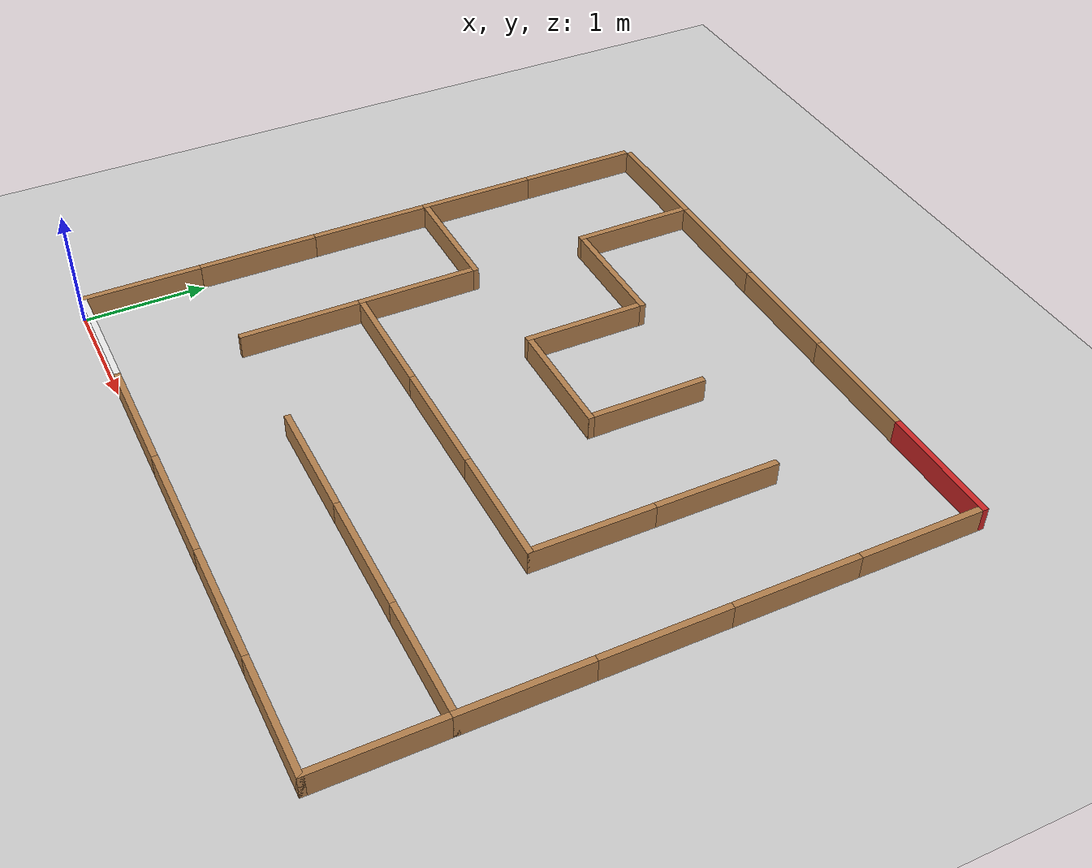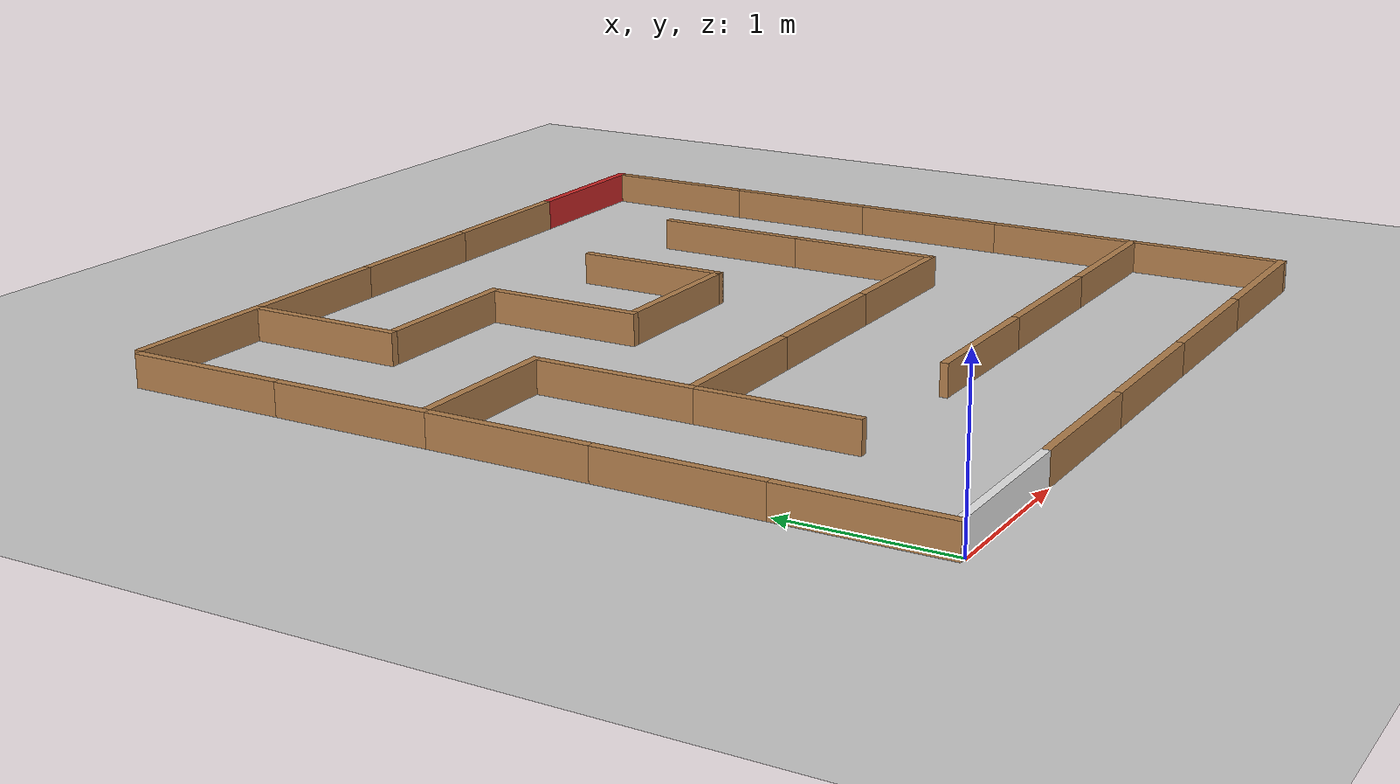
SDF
<sdf version="1.7">
 <world name="world_5_5">
  <include><name>sun</name><uri>model://sun</uri></include>
  <include><name>ground</name><uri>model://ground_plane</uri></include>
  <include><name>labyrinth_5_5</name><uri>model://labyrinth_5_5</uri></include>
  <scene><shadows>0</shadows></scene>
 </world>
</sdf>

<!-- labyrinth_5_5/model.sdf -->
<sdf version="1.7">
    <model name="labyrinth">

			<include><name>0_4v</name><uri>model://wall</uri><pose>0 4 0 0 0 1.5707963267948966</pose></include>

			<include><name>0_5h</name><uri>model://wall</uri><pose>0 5 0 0 0 0</pose></include>

			<include><name>0_3h</name><uri>model://wall</uri><pose>0 3 0 0 0 0</pose></include>

			<include><name>0_3v</name><uri>model://wall</uri><pose>0 3 0 0 0 1.5707963267948966</pose></include>

			<include><name>0_2v</name><uri>model://wall</uri><pose>0 2 0 0 0 1.5707963267948966</pose></include>

			<include><name>0_1v</name><uri>model://wall</uri><pose>0 1 0 0 0 1.5707963267948966</pose></include>

			<include><name>0_0h</name><uri>model://wall_White</uri><pose>0 0 0 0 0 0</pose></include>

			<include><name>0_0v</name><uri>model://wall</uri><pose>0 0 0 0 0 1.5707963267948966</pose></include>

			<include><name>1_4h</name><uri>model://wall</uri><pose>1 4 0 0 0 0</pose></include>

			<include><name>1_4v</name><uri>model://wall</uri><pose>1 4 0 0 0 1.5707963267948966</pose></include>

			<include><name>1_5h</name><uri>model://wall</uri><pose>1 5 0 0 0 0</pose></include>

			<include><name>1_2h</name><uri>model://wall</uri><pose>1 2 0 0 0 0</pose></include>

			<include><name>1_2v</name><uri>model://wall</uri><pose>1 2 0 0 0 1.5707963267948966</pose></include>

			<include><name>1_1v</name><uri>model://wall</uri><pose>1 1 0 0 0 1.5707963267948966</pose></include>

			<include><name>1_0h</name><uri>model://wall</uri><pose>1 0 0 0 0 0</pose></include>

			<include><name>2_5h</name><uri>model://wall</uri><pose>2 5 0 0 0 0</pose></include>

			<include><name>2_3h</name><uri>model://wall</uri><pose>2 3 0 0 0 0</pose></include>

			<include><name>2_3v</name><uri>model://wall</uri><pose>2 3 0 0 0 1.5707963267948966</pose></include>

			<include><name>2_2h</name><uri>model://wall</uri><pose>2 2 0 0 0 0</pose></include>

			<include><name>2_1h</name><uri>model://wall</uri><pose>2 1 0 0 0 0</pose></include>

			<include><name>2_0h</name><uri>model://wall</uri><pose>2 0 0 0 0 0</pose></include>

			<include><name>3_5h</name><uri>model://wall</uri><pose>3 5 0 0 0 0</pose></include>

			<include><name>3_3v</name><uri>model://wall</uri><pose>3 3 0 0 0 1.5707963267948966</pose></include>

			<include><name>3_2h</name><uri>model://wall</uri><pose>3 2 0 0 0 0</pose></include>

			<include><name>3_1h</name><uri>model://wall</uri><pose>3 1 0 0 0 0</pose></include>

			<include><name>3_0h</name><uri>model://wall</uri><pose>3 0 0 0 0 0</pose></include>

			<include><name>4_5h</name><uri>model://wall_Red</uri><pose>4 5 0 0 0 0</pose></include>

			<include><name>5_4v</name><uri>model://wall</uri><pose>5 4 0 0 0 1.5707963267948966</pose></include>

			<include><name>4_3v</name><uri>model://wall</uri><pose>4 3 0 0 0 1.5707963267948966</pose></include>

			<include><name>5_3v</name><uri>model://wall</uri><pose>5 3 0 0 0 1.5707963267948966</pose></include>

			<include><name>4_2v</name><uri>model://wall</uri><pose>4 2 0 0 0 1.5707963267948966</pose></include>

			<include><name>5_2v</name><uri>model://wall</uri><pose>5 2 0 0 0 1.5707963267948966</pose></include>

			<include><name>4_1h</name><uri>model://wall</uri><pose>4 1 0 0 0 0</pose></include>

			<include><name>5_1v</name><uri>model://wall</uri><pose>5 1 0 0 0 1.5707963267948966</pose></include>

			<include><name>4_0h</name><uri>model://wall</uri><pose>4 0 0 0 0 0</pose></include>

			<include><name>5_0v</name><uri>model://wall</uri><pose>5 0 0 0 0 1.5707963267948966</pose></include>

	</model>
</sdf>

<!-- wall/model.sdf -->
<sdf version="1.7">
	<model name="wall_Wood">
		<link name="link">
			<visual name="visual">

				<pose>0.5 0.025 0.1 0 0 0</pose>

				<geometry>
					<box>
						<size>1 0.05 0.2</size>
					</box>
				</geometry>

				<material>
					<script>
						<uri>file://media/materials/scripts/gazebo.material</uri>
						<name>Gazebo/Wood</name>
					</script>
				</material>
			</visual>
			<collision name="collision">

				<pose>0.5 0.025 0.1 0 0 0</pose>

				<geometry>
					<box>
						<size>1 0.05 0.2</size>
					</box>
				</geometry>

				<laser_retro>1</laser_retro>
			</collision>
		</link>
	</model>
</sdf>

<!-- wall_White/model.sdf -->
<sdf version="1.7">
	<model name="wall_White">
		<link name="link">
			<visual name="visual">

				<pose>0.5 0.025 0.1 0 0 0</pose>

				<geometry>
					<box>
						<size>1 0.05 0.2</size>
					</box>
				</geometry>

				<material>
					<script>
						<uri>file://media/materials/scripts/gazebo.material</uri>
						<name>Gazebo/White</name>
					</script>
				</material>
			</visual>
			<collision name="collision">

				<pose>0.5 0.025 0.1 0 0 0</pose>

				<geometry>
					<box>
						<size>1 0.05 0.2</size>
					</box>
				</geometry>

				<laser_retro>3</laser_retro>
			</collision>
		</link>
	</model>
</sdf>

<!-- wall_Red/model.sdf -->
<sdf version="1.7">
	<model name="wall_Red">
		<link name="link">
			<visual name="visual">

				<pose>0.5 0.025 0.1 0 0 0</pose>

				<geometry>
					<box>
						<size>1 0.05 0.2</size>
					</box>
				</geometry>

				<material>
					<script>
						<uri>file://media/materials/scripts/gazebo.material</uri>
						<name>Gazebo/Red</name>
					</script>
				</material>
			</visual>
			<collision name="collision">

				<pose>0.5 0.025 0.1 0 0 0</pose>

				<geometry>
					<box>
						<size>1 0.05 0.2</size>
					</box>
				</geometry>

				<laser_retro>2</laser_retro>
			</collision>
			<sensor name='sensor_contact_wall' type='contact'>
				<contact><collision>collision</collision></contact>
			</sensor>
		</link>
		<plugin filename="libTouchPlugin.so" name='plugin_touch'>
			<sensor>sensor_contact_wall</sensor>
			<target>tb3</target>
			<namespace>finish_wall</namespace>
			<time>0.00001</time>
			<enabled>true</enabled>
		</plugin>
	</model>
</sdf>
